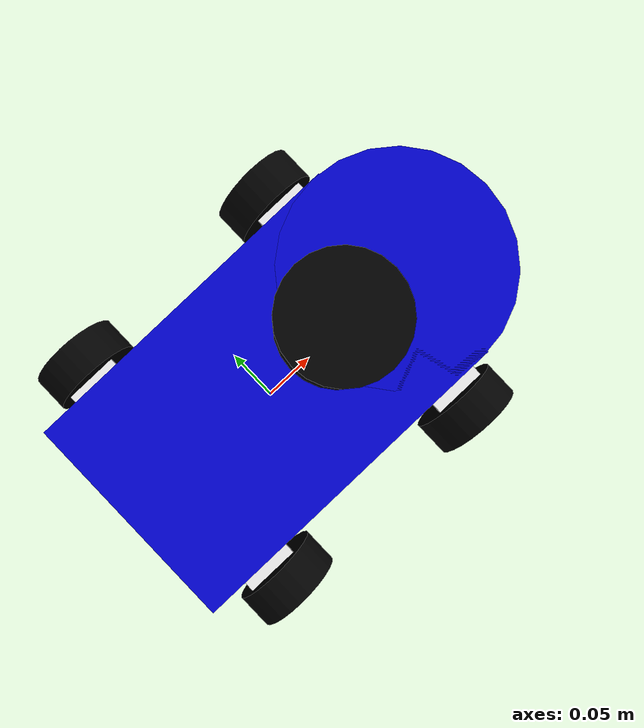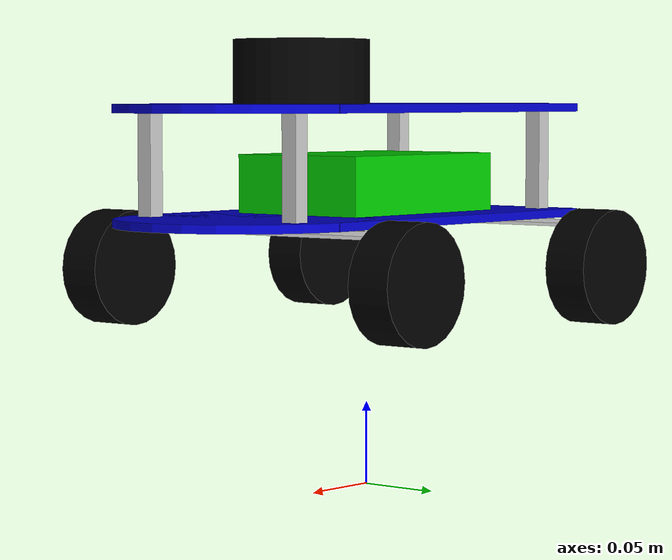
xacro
<?xml version="1.0"?>
   <robot name="ALLAI-allbot">

    <link name="base_footprint"/>

    <link name="base_link">
      <visual>
        <geometry>
          <box size="0.23 0.15 0.005"/>
        </geometry>
        <origin rpy="0 0 0" xyz="0 0 0.065"/>
        <material name="blue">
          <color rgba="0 0 .8 1"/>
        </material>
      </visual>
    </link>

    <link name="base_controlbox">
      <visual>
        <geometry>
          <box size="0.13 0.09 0.035"/>
        </geometry>
        <origin rpy="0 0 0" xyz="0 0 0.085"/>
        <material name="green">
          <color rgba="0.0 0.8 0.0 1.0"/>
        </material>
      </visual>
    </link>

    <link name="base_link_head">
      <visual>
        <geometry>
          <cylinder length="0.005" radius="0.075"/>
        </geometry>
        <origin rpy="0 0 0" xyz="0.11 0 0.065"/>
        <material name="blue">
          <color rgba="0 0 .8 1"/>
        </material>
      </visual>
    </link>

    <link name="lidar_deck">
      <visual>
        <geometry>
          <box size="0.23 0.15 0.005"/>
        </geometry>
        <origin rpy="0 0 0" xyz="0 0 0.13"/>
        <material name="blue">
          <color rgba="0 0 .8 1"/>
        </material>
      </visual>
    </link>

    <link name="lidar_deck_head">
      <visual>
        <geometry>
          <cylinder length="0.005" radius="0.075"/>
        </geometry>
        <origin rpy="0 0 0" xyz="0.11 0 0.13"/>
        <material name="blue">
          <color rgba="0 0 .8 1"/>
        </material>
      </visual>
    </link>

    <link name="wheel_rear_left">
      <visual>
        <geometry>
          <cylinder length="0.027" radius="0.0345"/>
        </geometry>
        <origin rpy="0 0 0" xyz="0 0 0"/>
        <material name="black">
          <color rgba="0 0 0 1"/>
        </material>
      </visual>
    </link>

    <link name="wheel_rear_right">
      <visual>
        <geometry>
          <cylinder length="0.027" radius="0.0345"/>
        </geometry>
        <origin rpy="0 0 0" xyz="0 0 0"/>
        <material name="black">
          <color rgba="0 0 0 1"/>
        </material>
      </visual>
    </link>

    <link name="wheel_front_right">
      <visual>
        <geometry>
          <cylinder length="0.027" radius="0.0345"/>
        </geometry>
        <origin rpy="0 0 0" xyz="0 0 0"/>
        <material name="black">
          <color rgba="0 0 0 1"/>
        </material>
      </visual>
    </link>

    <link name="wheel_front_left">
      <visual>
        <geometry>
          <cylinder length="0.027" radius="0.0345"/>
        </geometry>
        <origin rpy="0 0 0" xyz="0 0 0"/>
        <material name="black">
          <color rgba="0 0 0 1"/>
        </material>
      </visual>
    </link>

    <link name="wheel_rear_track">
      <visual>
        <geometry>
          <box size="0.04 0.19 0.002"/>
        </geometry>
        <origin rpy="0 0 0" xyz="-0.085 0.0 0.06"/>
        <material name="white"/>
      </visual>
    </link>

    <link name="wheel_front_track">
      <visual>
        <geometry>
          <box size="0.04 0.19 0.002"/>
        </geometry>
        <origin rpy="0 0 0" xyz="0.10 0.0 0.06"/>
        <material name="white"/>
      </visual>
    </link>

    <link name="laser">
      <visual>
        <geometry>
          <cylinder length="0.04" radius="0.04"/>
        </geometry>
        <origin rpy="0 0 0" xyz="0.06 0 0.15"/>
        <material name="black"/>
      </visual>
    </link>

    <link name="left_rear_pole">
      <visual>
        <geometry>
          <box size="0.01 0.01 0.065"/>
        </geometry>
        <origin rpy="0 0 0" xyz="-0.10 0.055 0.096"/>
        <material name="silver">
          <color rgba="192 192 192 0.6"/>
        </material>
      </visual>
    </link>

    <link name="left_front_pole">
      <visual>
        <geometry>
          <box size="0.01 0.01 0.065"/>
        </geometry>
        <origin rpy="0 0 0" xyz="0.13 0.055 0.096"/>
        <material name="silver">
          <color rgba="192 192 192 0.6"/>
        </material>
      </visual>
    </link>

    <link name="right_rear_pole">
      <visual>
        <geometry>
          <box size="0.01 0.01 0.065"/>
        </geometry>
        <origin rpy="0 0 0" xyz="-0.10 -0.055 0.096"/>
        <material name="silver">
          <color rgba="192 192 192 0.6"/>
        </material>
      </visual>
    </link>

    <link name="right_front_pole">
      <visual>
        <geometry>
          <box size="0.01 0.01 0.065"/>
        </geometry>
        <origin rpy="0 0 0" xyz="0.13 -0.055 0.096"/>
        <material name="silver">
          <color rgba="192 192 192 0.6"/>
        </material>
      </visual>
    </link>

    <joint name="base_joint" type="fixed">
      <parent link="base_footprint"/>
      <child link="base_link"/>
      <origin xyz="0.0 0.0 0.098" rpy="0 0 0"/>
    </joint>

    <joint name="base_to_link_head" type="fixed">
      <parent link="base_link"/>
      <child link="base_link_head"/>
      <origin xyz="0.0 0.0 0.0" rpy="0 0 0"/>
    </joint>

    <joint name="base_to_controlbox" type="fixed">
      <parent link="base_link"/>
      <child link="base_controlbox"/>
      <origin xyz="0.0 0.0 0.0" rpy="0 0 0"/>
    </joint>

    <joint name="base_to_lidar_deck" type="fixed">
      <parent link="base_link"/>
      <child link="lidar_deck"/>
      <origin xyz="0.0 0.0 0.0" rpy="0 0 0"/>
    </joint>

    <joint name="base_to_lidar_deck_head" type="fixed">
      <parent link="base_link"/>
      <child link="lidar_deck_head"/>
      <origin xyz="0.0 0.0 0.0" rpy="0 0 0"/>
    </joint>

    <joint name="base_to_wheel_rear_track" type="fixed">
      <parent link="base_link"/>
      <child link="wheel_rear_track"/>
      <origin xyz="0.0 0.0 0.0" rpy="0 0 0"/>
    </joint>

    <joint name="base_to_wheel_front_track" type="fixed">
      <parent link="base_link"/>
      <child link="wheel_front_track"/>
      <origin xyz="0.0 0.0 0.0" rpy="0 0 0"/>
    </joint>

<!-- type : "fixed", "continuous" | fixed wheel attached to the body -->
<!-- joint_state_publisher  -->
    <joint name="base_to_wheel_front_right" type="fixed">
      <parent link="base_link"/>
      <child link="wheel_front_right"/>
      <origin rpy="1.57 0 0" xyz="0.10 -0.11 0.0345"/>
    </joint>

    <joint name="base_to_wheel_front_left" type="fixed">
      <parent link="base_link"/>
      <child link="wheel_front_left"/>
      <origin rpy="1.57 0 0" xyz="0.10 0.11 0.0345"/>
    </joint>

    <joint name="base_to_wheel_rear_left" type="fixed">
      <parent link="base_link"/>
      <child link="wheel_rear_left"/>
      <origin rpy="1.57 0 0" xyz="-0.085 0.11 0.0345"/>
    </joint>

    <joint name="base_to_wheel_rear_right" type="fixed">
      <parent link="base_link"/>
      <child link="wheel_rear_right"/>
      <origin rpy="1.57 0 0" xyz="-0.085 -0.11 0.0345"/>
    </joint>

    <joint name="base_to_laser" type="fixed">
      <parent link="base_link"/>
      <child link="laser"/>
      <origin xyz="0.0 0.0 0.0"/>
    </joint>

    <joint name="base_to_left_pole_one" type="fixed">
      <parent link="base_link"/>
      <child link="left_rear_pole"/>
      <origin xyz="0 0 0"/>
    </joint>

    <joint name="base_to_left_pole_two" type="fixed">
      <parent link="base_link"/>
      <child link="left_front_pole"/>
      <origin xyz="0 0 0"/>
    </joint>

    <joint name="base_to_right_pole_one" type="fixed">
      <parent link="base_link"/>
      <child link="right_rear_pole"/>
      <origin xyz="0 0 0"/>
    </joint>

    <joint name="base_to_right_pole_two" type="fixed">
      <parent link="base_link"/>
      <child link="right_front_pole"/>
      <origin xyz="0 0 0"/>
    </joint>

</robot>
